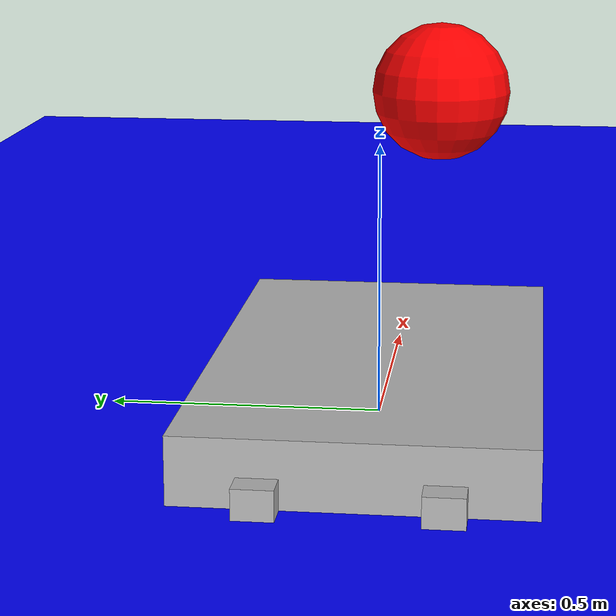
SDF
<?xml version="1.0"?>
<sdf version="1.7">
  <world name="my_world">
    <model name="water_plane">
      <static>true</static>
      <link name="link">
        <visual name="water">
          <geometry>
            <plane>
              <size>100 100</size>
              <normal>0 0 1</normal>
            </plane>
          </geometry>
          <material>
            <ambient>0 0 1 0.5</ambient>
            <diffuse>0 0 1 0.5</diffuse>
            <specular>0 0 1 0.5</specular>
          </material>
        </visual>
      </link>
    </model>

    <model name="red_sphere">
      <pose>2 0 0.3 0 0 0</pose>
      <static>true</static>
      <link name="link">
        <visual name="visual">
          <geometry><sphere><radius>0.2</radius></sphere></geometry>
          <material>
            <ambient>1 0 0 1</ambient>
            <diffuse>1 0 0 1</diffuse>
            <specular>1 0 0 1</specular>
          </material>
        </visual>
        <collision name="collision">
          <geometry><sphere><radius>0.2</radius></sphere></geometry>
        </collision>
      </link>
    </model>

    <include>
      <uri>model://box_usv</uri>
      <name>box_usv</name>
      <pose>0 0 0 0 0 0</pose>
    </include>

    <physics name="default_physics" type="ode">
      <max_step_size>0.001</max_step_size>
      <real_time_factor>1.0</real_time_factor>
    </physics>

    <plugin filename="ignition-gazebo-buoyancy-system" name="ignition::gazebo::systems::Buoyancy">
      <graded_buoyancy>
        <default_density>1000</default_density>
        <density_change>
          <above_depth>0</above_depth>
          <density>1</density>
        </density_change>
      </graded_buoyancy>
    </plugin>

    <plugin filename="ignition-gazebo-physics-system" name="ignition::gazebo::systems::Physics"/>
    <plugin filename="ignition-gazebo-user-commands-system" name="ignition::gazebo::systems::UserCommands"/>
    <plugin filename="ignition-gazebo-scene-broadcaster-system" name="ignition::gazebo::systems::SceneBroadcaster"/>
  </world>
</sdf>

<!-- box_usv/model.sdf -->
<sdf version="1.7">
  <model name="box_usv">
    <link name="base_link">
      <pose>0 0 0 0 0 0</pose>
      <inertial>
        <pose>0.0012 0 -0.05 0 0 0</pose>
        <mass>100</mass>
        <inertia>
          <ixx>1.9833</ixx>
          <ixy>0</ixy>
          <ixz>0</ixz>
          <iyy>2.358</iyy>
          <iyz>0</iyz>
          <izz>3.292</izz>
        </inertia>
      </inertial>
      <visual name="hull_visual">
        <geometry>
          <box><size>1 0.6 0.23</size></box>
        </geometry>
      </visual>
      <collision name="hull_collision">
        <geometry>
          <box><size>1 0.6 0.23</size></box>
        </geometry>
      </collision>
    </link>

    <link name="camera_link">
      <pose>0 0 0.6 0 0 0</pose>
      <sensor name="camera_sensor" type="camera">
        <camera>
          <horizontal_fov>1.047</horizontal_fov>
          <image>
            <width>640</width>
            <height>480</height>
            <format>R8G8B8</format>
          </image>
          <clip>
            <near>0.1</near>
            <far>100</far>
          </clip>
        </camera>
        <always_on>true</always_on>
        <update_rate>30</update_rate>
        <visualize>true</visualize>
      </sensor>
    </link>
    <joint name="camera_joint" type="fixed">
      <parent>base_link</parent>
      <child>camera_link</child>
    </joint>

    <link name="thruster_L">
      <pose>-0.525 -0.15 0 0 1.57 0</pose>
      <visual name="visual">
        <geometry><box><size>0.1 0.07 0.05</size></box></geometry>
      </visual>
      <collision name="collision">
        <geometry><box><size>0.1 0.07 0.05</size></box></geometry>
      </collision>
      <inertial>
        <mass>0.525</mass>
        <inertia>
          <ixx>0.00032375</ixx>
          <ixy>0</ixy>
          <ixz>0</ixz>
          <iyy>0.0018594</iyy>
          <iyz>0</iyz>
          <izz>0.0019644</izz>
        </inertia>
      </inertial>
    </link>
    <joint name="joint_propeller_port_L" type="revolute">
      <parent>base_link</parent>
      <child>thruster_L</child>
      <axis><xyz>0 0 1</xyz></axis>
    </joint>

    <link name="thruster_R">
      <pose>-0.525 0.15 0 0 1.57 0</pose>
      <visual name="visual">
        <geometry><box><size>0.1 0.07 0.05</size></box></geometry>
      </visual>
      <collision name="collision">
        <geometry><box><size>0.1 0.07 0.05</size></box></geometry>
      </collision>
      <inertial>
        <mass>0.525</mass>
        <inertia>
          <ixx>0.00032375</ixx>
          <ixy>0</ixy>
          <ixz>0</ixz>
          <iyy>0.0018594</iyy>
          <iyz>0</iyz>
          <izz>0.0019644</izz>
        </inertia>
      </inertial>
    </link>
    <joint name="joint_propeller_port_R" type="revolute">
      <parent>base_link</parent>
      <child>thruster_R</child>
      <axis><xyz>0 0 1</xyz></axis>
    </joint>

    <plugin filename="ignition-gazebo-hydrodynamics-system" name="ignition::gazebo::systems::Hydrodynamics">
      <link_name>base_link</link_name>
      <xDotU>-0.04876161</xDotU>
      <yDotV>-1.26324739</yDotV>
      <zDotW>-1.26324739</zDotW>
      <kDotP>0</kDotP>
      <mDotQ>-0.3346</mDotQ>
      <nDotR>-0.3346</nDotR>
      <xUabsU>-0.62282</xUabsU>
      <xU>-5</xU>
      <yVabsV>-60.127</yVabsV>
      <yV>-5</yV>
      <zWabsW>-6.0127</zWabsW>
      <zW>-100</zW>
      <kPabsP>-0.001916</kPabsP>
      <kP>-1</kP>
      <mQabsQ>-6.32698957</mQabsQ>
      <mQ>-1</mQ>
      <nRabsR>-6.32698957</nRabsR>
      <nR>-1</nR>
    </plugin>
    <plugin filename="ignition-gazebo-thruster-system" name="ignition::gazebo::systems::Thruster">
      <joint_name>joint_propeller_port_L</joint_name>
      <namespace>box_usv</namespace>
      <topic>thruster_L</topic>
      <thrust_coefficient>0.001</thrust_coefficient>
      <fluid_density>1000</fluid_density>
      <propeller_diameter>0.4</propeller_diameter>
    </plugin>
    <plugin filename="ignition-gazebo-thruster-system" name="ignition::gazebo::systems::Thruster">
      <joint_name>joint_propeller_port_R</joint_name>
      <namespace>box_usv</namespace>
      <topic>thruster_R</topic>
      <thrust_coefficient>0.001</thrust_coefficient>
      <fluid_density>1000</fluid_density>
      <propeller_diameter>0.4</propeller_diameter>
    </plugin>
    <plugin filename="ignition-gazebo-sensors-system" name="ignition::gazebo::systems::Sensors">
      <render_engine>ogre2</render_engine>
    </plugin>
  </model>
</sdf>
